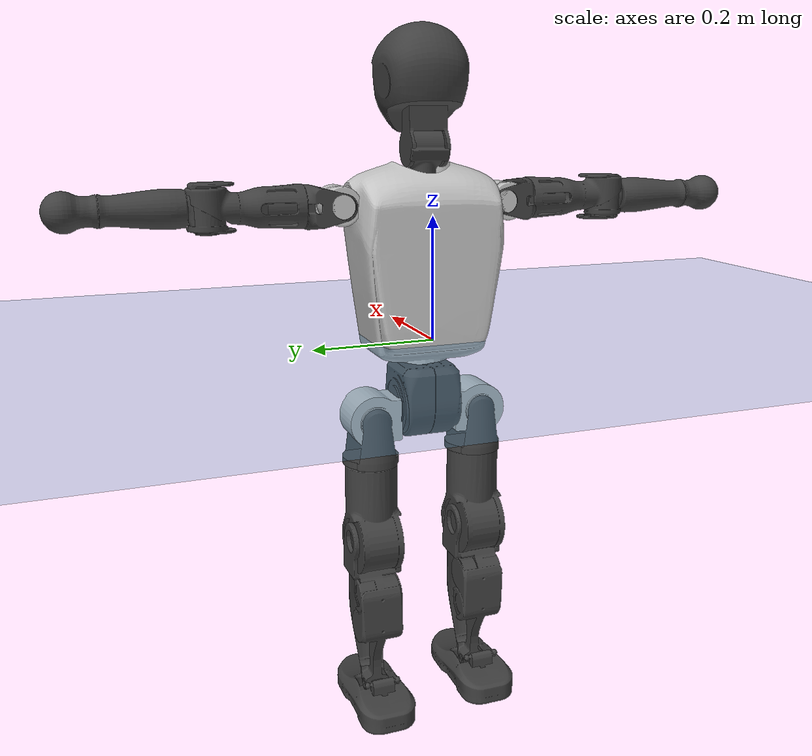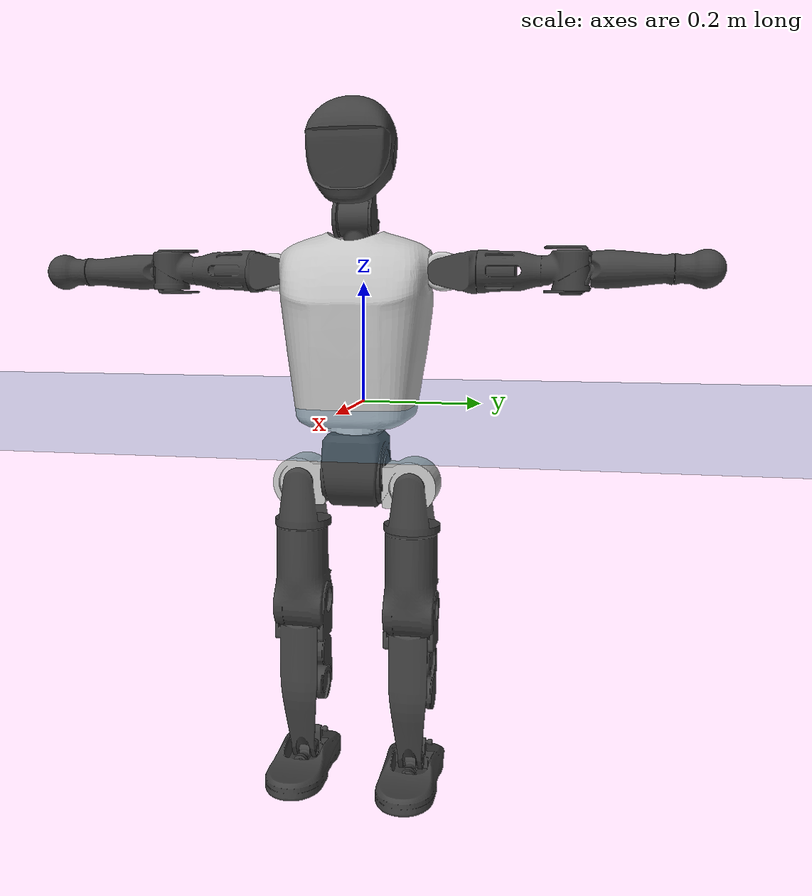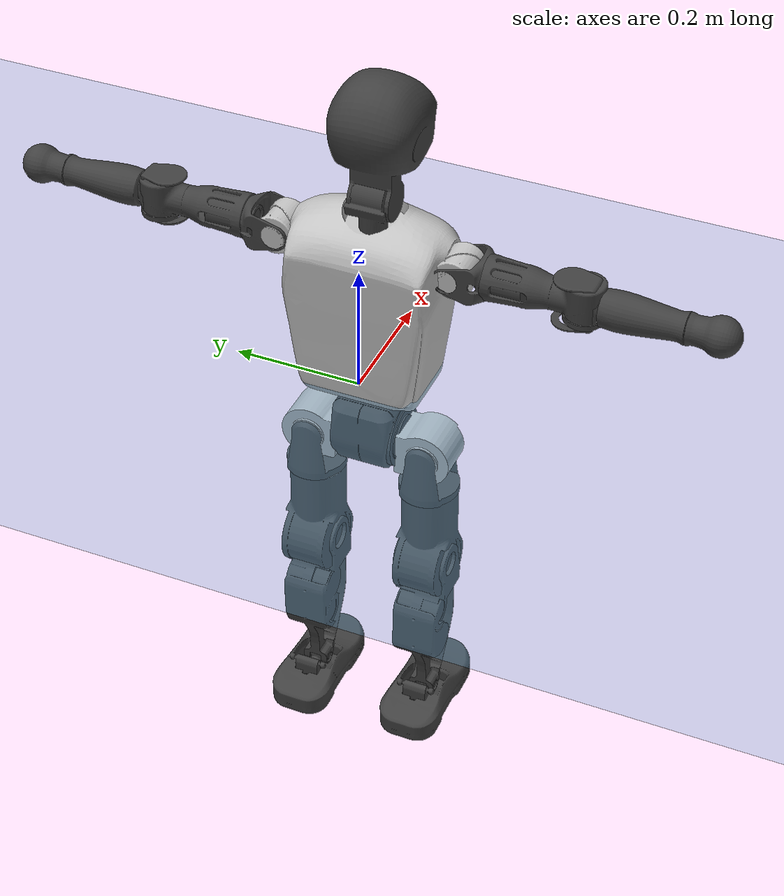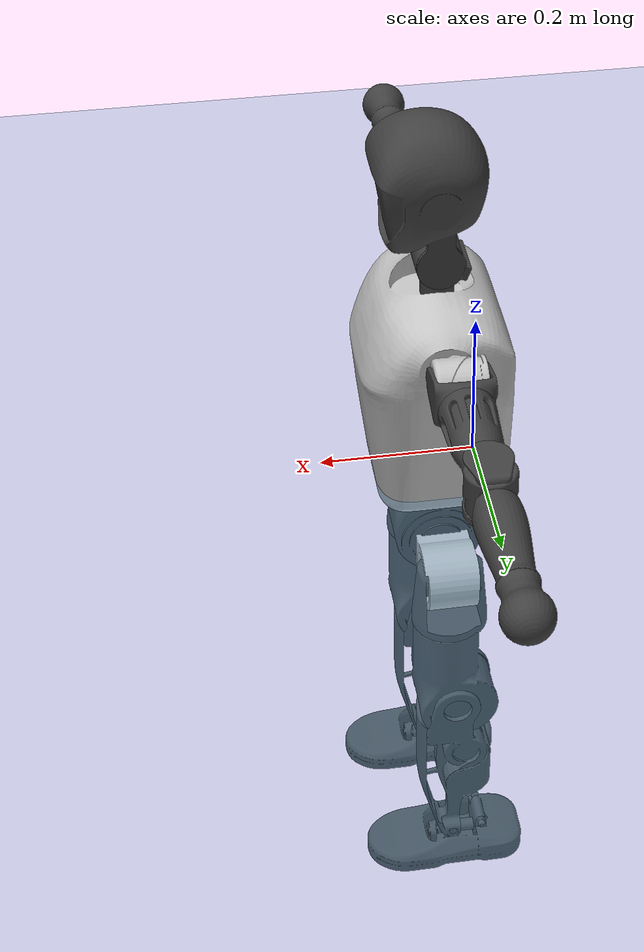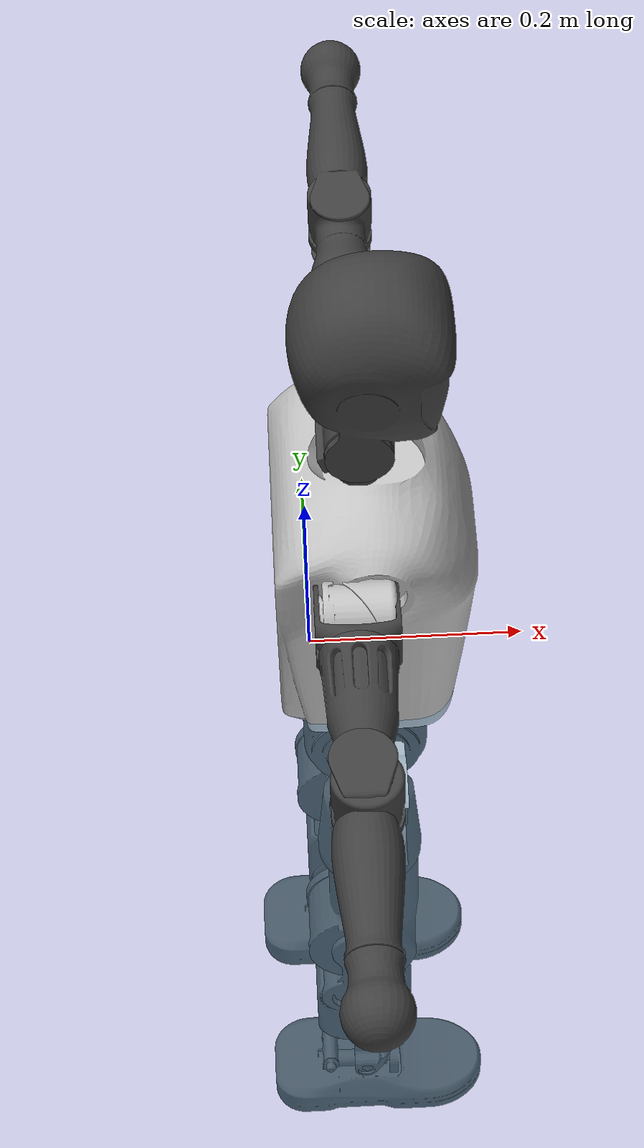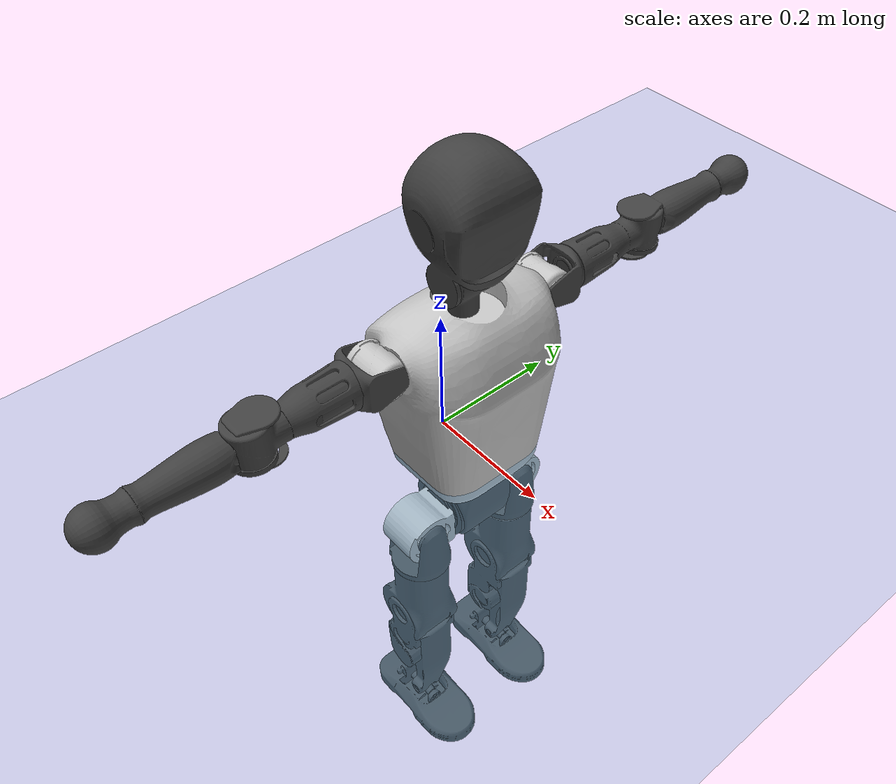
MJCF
<mujoco model="T1">
  <compiler angle="radian" assetdir="assets" balanceinertia="true" inertiafromgeom="false"/>

  <option timestep="0.005" density="1.2" viscosity="2e-05"/>

  <size nkey="1"/>

  <visual>
    <quality shadowsize="8192"/>
    <map shadowclip="0.5"/>
  </visual>

  <default>
    <default class="/">
      <joint armature="0.01" damping="0.01" frictionloss="0.1"/>
      <geom contype="0" conaffinity="0" group="1" solref="-1000 -80"/>
      <site size="0.01 0.005 0.005" group="5"/>
      <general forcelimited="true" biastype="affine" gainprm="25" biasprm="0 -25 -0.6"/>
      <default class="t1">
        <geom rgba="0.25 0.25 0.25 1"/>
        <default class="visual">
          <geom type="mesh" group="2"/>
        </default>
        <default class="collision">
          <geom group="3"/>
        </default>
        <default class="foot">
          <geom size="0.1115 0.05 0.015" type="box" condim="6" group="4" priority="1" solimp="0.015 1 0.015"/>
        </default>
        <default class="reward_collision_sphere">
          <geom group="5" rgba="1 0 0 1"/>
        </default>
      </default>
    </default>
  </default>

  <asset>
    <texture type="skybox" colorspace="auto" name="//unnamed_texture_0" builtin="gradient" rgb1="0.95 0.95 0.95" rgb2="0.95 0.95 0.95" width="100" height="600"/>
    <texture type="2d" colorspace="auto" name="texplane" builtin="checker" rgb1="0.345 0.575 0.748" rgb2="0.345 0.575 0.748" markrgb="1 1 1" width="512" height="512"/>
    <material name="MatPlane" class="/" texture="texplane" texuniform="true" texrepeat="2 2" specular="0.9"/>
    <mesh name="Trunk" class="/" file="Trunk.stl"/>
    <mesh name="H1" class="/" file="H1.stl"/>
    <mesh name="H2" class="/" file="H2.stl"/>
    <mesh name="AL1" class="/" file="AL1.stl"/>
    <mesh name="AL2" class="/" file="AL2.stl"/>
    <mesh name="AL3" class="/" file="AL3.stl"/>
    <mesh name="left_hand_link" class="/" file="left_hand_link.stl"/>
    <mesh name="AR1" class="/" file="AR1.stl"/>
    <mesh name="AR2" class="/" file="AR2.stl"/>
    <mesh name="AR3" class="/" file="AR3.stl"/>
    <mesh name="right_hand_link" class="/" file="right_hand_link.stl"/>
    <mesh name="Waist" class="/" file="Waist.stl"/>
    <mesh name="Hip_Pitch_Left" class="/" file="Hip_Pitch_Left.stl"/>
    <mesh name="Hip_Roll_Left" class="/" file="Hip_Roll_Left.stl"/>
    <mesh name="Hip_Yaw_Left" class="/" file="Hip_Yaw_Left.stl"/>
    <mesh name="Shank_Left" class="/" file="Shank_Left.stl"/>
    <mesh name="Ankle_Cross_Left" class="/" file="Ankle_Cross_Left.stl"/>
    <mesh name="left_foot_link" class="/" file="left_foot_link.stl"/>
    <mesh name="Hip_Pitch_Right" class="/" file="Hip_Pitch_Right.stl"/>
    <mesh name="Hip_Roll_Right" class="/" file="Hip_Roll_Right.stl"/>
    <mesh name="Hip_Yaw_Right" class="/" file="Hip_Yaw_Right.stl"/>
    <mesh name="Shank_Right" class="/" file="Shank_Right.stl"/>
    <mesh name="Ankle_Cross_Right" class="/" file="Ankle_Cross_Right.stl"/>
    <mesh name="right_foot_link" class="/" file="right_foot_link.stl"/>
  </asset>

  <worldbody>
    <geom name="floor" class="/" size="100 100 0.125" type="plane" group="0" material="MatPlane"/>
    <light name="toplight_shadow" class="/" pos="0 0 5" dir="0.0990148 0.0990148 -0.990148" type="directional" ambient="0.04 0.04 0.04" diffuse="0.55 0.55 0.55" specular="0.12 0.12 0.12"/>
    <light name="toplight_fill" class="/" pos="0 0 5" dir="0.0990148 0.0990148 -0.990148" type="directional" castshadow="false" ambient="0.04 0.04 0.04" diffuse="0.3 0.3 0.3" specular="0.08 0.08 0.08"/>
    <body name="trunk" childclass="t1" pos="-0.000546398 -5.97754e-05 0.00192627" quat="1 1.25386e-05 -3.83007e-06 -1.14594e-05">
      <inertial pos="0.0437893 -0.000902023 0.104373" quat="0.999959 2.09181e-05 -0.00900229 5.15875e-05" mass="7.86173" diaginertia="0.0282217 0.0405026 0.0492171"/>
      <joint name="//unnamed_joint_0" type="free" armature="0" damping="0" frictionloss="0"/>
      <geom name="//unnamed_geom_1" class="visual" rgba="0.76 0.76 0.76 1" mesh="Trunk"/>
      <geom name="//unnamed_geom_2" class="collision" size="0.0665342 0.0887122 0.133068" pos="0.0476818 0 0.118211" type="box"/>
      <geom name="//unnamed_geom_3" class="reward_collision_sphere" size="0.102019" pos="0.0476818 0 0.098509"/>
      <geom name="//unnamed_geom_4" class="reward_collision_sphere" size="0.0133068" pos="0.0476818 0.0749343 0"/>
      <geom name="//unnamed_geom_5" class="reward_collision_sphere" size="0.0133068" pos="0.0476818 -0.0749343 0"/>
      <geom name="//unnamed_geom_6" class="reward_collision_sphere" size="0.0133068" pos="0.0476818 0.0943291 0.177316"/>
      <geom name="//unnamed_geom_7" class="reward_collision_sphere" size="0.0133068" pos="0.0476818 -0.0943291 0.177316"/>
      <site name="imu" pos="0.0130377 -0.0117711 -0.00255482" size="0.00887122"/>
      <camera name="track" pos="0 -1.76316 0" quat="0.707107 0.707107 0 0" mode="trackcom"/>
      <camera name="ego_camera" pos="0.096953 0 0.413738" quat="-0.5 -0.5 0.5 0.5"/>
      <body name="H1" pos="0.0493815 -0.00108955 0.239668" quat="1 0.000106844 4.8404e-05 5.82887e-05">
        <inertial pos="-0.00023701 -0.00051202 0.0574313" quat="0.766372 -0.0131957 -0.00162881 0.64226" mass="0.313318" diaginertia="7.91575e-05 0.000119013 0.000143167"/>
        <joint name="AAHead_yaw" pos="0 0 0" axis="0.000981555 -0.000324539 0.999999" stiffness="0.0109593" range="-1.58114 1.58661" armature="0.00848472" damping="0.00475576" frictionloss="0.0933717"/>
        <geom name="//unnamed_geom_8" class="visual" mesh="H1"/>
        <body name="H2" pos="-0.000430692 -0.00263312 0.0609779" quat="1 -4.0023e-05 2.76815e-05 -8.41784e-05">
          <inertial pos="0.00803777 0.00329978 0.0980328" quat="0.988595 0.107907 -0.0743607 -0.0742062" mass="0.457982" diaginertia="0.000643558 0.00104425 0.00161934"/>
          <joint name="Head_pitch" pos="0 0 0" axis="0.00465078 -0.999987 -0.00224781" range="-1.21779 0.373172" armature="0.00788382" damping="0.00266065" frictionloss="0.089028"/>
          <geom name="//unnamed_geom_9" class="visual" mesh="H2"/>
          <geom name="//unnamed_geom_10" class="collision" size="0.0709698" pos="0.00794697 0 0.10836"/>
          <geom name="//unnamed_geom_11" class="reward_collision_sphere" size="0.079841" pos="0.0158939 0 0.098509"/>
        </body>
      </body>
      <body name="AL1" pos="0.0461618 0.095151 0.215453" quat="1 -0.000203189 0.000361012 9.14315e-05">
        <inertial pos="-0.000975274 0.0392876 0.00241897" quat="0.503945 0.49537 -0.50496 0.495644" mass="0.374618" diaginertia="0.000436935 0.000687339 0.000270075"/>
        <joint name="Left_Shoulder_Pitch" pos="0 0 0" axis="0.00245406 0.99998 0.00584598" range="-3.3573 1.19695" armature="0.00846529" damping="0.0084931" frictionloss="0.0885189"/>
        <geom name="//unnamed_geom_12" class="visual" rgba="0.76 0.76 0.76 1" mesh="AL1"/>
        <body name="AL2" pos="1.2369e-05 0.0450198 -0.00130734" quat="0.999999 0.00106462 -0.000181262 -0.000936335">
          <inertial pos="0.00242631 0.0328696 -0.00190929" quat="0.485828 0.512147 -0.488471 0.512906" mass="0.11897" diaginertia="0.000130536 0.000194179 0.000170738"/>
          <joint name="Left_Shoulder_Roll" pos="0 0 0" axis="-0.999991 0.00258475 -0.00333072" range="-1.59458 1.74795" armature="0.00891128" damping="0" frictionloss="0.0922282"/>
          <geom name="//unnamed_geom_13" class="visual" mesh="AL2"/>
          <body name="AL3" pos="0.00176656 0.0564574 0.00126524" quat="0.999999 -0.00112394 0.000219485 -0.000275018">
            <inertial pos="-0.000551267 0.0755913 -0.000147584" quat="0.703109 0.71102 -0.000148752 -0.00936371" mass="0.735324" diaginertia="0.00418285 0.00707621 0.00059403"/>
            <joint name="Left_Elbow_Pitch" pos="0 0 0" axis="-0.00135243 -0.999998 0.00150708" range="-2.27055 2.27414" armature="0.009126" damping="0.012375" frictionloss="0.0893855"/>
            <geom name="//unnamed_geom_14" class="visual" mesh="AL3"/>
            <geom name="//unnamed_geom_15" class="collision" size="0.0266137 0.0665342" pos="0 0.044079 0" quat="0.707105 0.707108 0 0" type="cylinder"/>
            <geom name="//unnamed_geom_16" class="reward_collision_sphere" size="0.0319364"/>
            <body name="left_hand_link" pos="0.000152185 0.132691 0.00217791" quat="0.999999 0.000547197 0.00105538 0.000459094">
              <inertial pos="-0.00039835 0.0968829 -0.00188378" quat="0.710033 0.704075 0.0114527 0.00037781" mass="0.220624" diaginertia="0.00250698 0.0042122 0.000192959"/>
              <joint name="Left_Elbow_Yaw" pos="0 0 0" axis="0.00872013 0.011277 0.999898" range="-2.43931 0.0354387" armature="0.00900304" damping="0.00553198" frictionloss="0.100253"/>
              <geom name="//unnamed_geom_17" class="visual" mesh="left_hand_link"/>
              <geom name="//unnamed_geom_18" class="collision" size="0.0266137 0.0776232" pos="0 0.114605 0" quat="0.707105 0.707108 0 0" type="cylinder"/>
              <geom name="//unnamed_geom_19" class="reward_collision_sphere" size="0.0443561"/>
              <geom name="//unnamed_geom_20" class="reward_collision_sphere" size="0.0310493" pos="0 0.0969739 0"/>
              <geom name="//unnamed_geom_21" class="reward_collision_sphere" size="0.0310493" pos="0 0.18954 0"/>
            </body>
          </body>
        </body>
      </body>
      <body name="AR1" pos="0.0431022 -0.0910056 0.215365" quat="1 4.93119e-05 0.000803949 -0.000161629">
        <inertial pos="-0.000576927 -0.0389093 -0.000556413" quat="0.505241 0.493834 -0.504383 0.496445" mass="0.369407" diaginertia="0.000435773 0.000696776 0.00026956"/>
        <joint name="Right_Shoulder_Pitch" pos="0 0 0" axis="0.000257445 -1 8.17659e-05" stiffness="0.015843" range="-1.17641 3.32073" armature="0.00864125" damping="0.0188155" frictionloss="0.0891133"/>
        <geom name="//unnamed_geom_22" class="visual" rgba="0.76 0.76 0.76 1" mesh="AR1"/>
        <body name="AR2" pos="-0.00275721 -0.0386076 0.000555594" quat="1 -4.06547e-05 -0.000212332 8.14498e-05">
          <inertial pos="0.0020895 -0.0340793 -0.00105405" quat="0.509587 0.487751 -0.512552 0.489602" mass="0.110126" diaginertia="0.000122237 0.000176472 0.000164649"/>
          <joint name="Right_Shoulder_Roll" pos="0 0 0" axis="-0.99999 -0.00416219 -0.00185193" stiffness="0.00703923" range="-1.73559 1.5211" armature="0.0089973" damping="0.00442517" frictionloss="0.0778244"/>
          <geom name="//unnamed_geom_23" class="visual" mesh="AR2"/>
          <body name="AR3" pos="-0.000427826 -0.0507487 0.00205009" quat="1 1.41033e-05 -1.66224e-05 -3.29238e-06">
            <inertial pos="-0.000229461 -0.0741758 -0.000719926" quat="0.705065 0.709034 -0.0123424 0.00143086" mass="0.708821" diaginertia="0.00405689 0.00688679 0.000581929"/>
            <joint name="Right_Elbow_Pitch" pos="0 0 0" axis="2.13577e-05 1 2.4832e-05" stiffness="0.0112051" range="-2.26916 2.27253" armature="0.00915949" damping="0.011104" frictionloss="0.100036"/>
            <geom name="//unnamed_geom_24" class="visual" mesh="AR3"/>
            <geom name="//unnamed_geom_25" class="collision" size="0.0266137 0.0665342" pos="0 -0.044079 0" quat="0.707105 0.707108 0 0" type="cylinder"/>
            <geom name="//unnamed_geom_26" class="reward_collision_sphere" size="0.0319364"/>
            <body name="right_hand_link" pos="-0.00265711 -0.129091 -0.00149671" quat="1 0.000201239 -6.24891e-05 0.000158497">
              <inertial pos="-0.00107682 -0.0966133 0.00325187" quat="0.704593 0.709508 0.0103263 0.00625655" mass="0.219188" diaginertia="0.00246911 0.00419892 0.000192482"/>
              <joint name="Right_Elbow_Yaw" pos="0 0 0" axis="-0.000338555 0.000254191 1" stiffness="0.00127945" range="-0.0408334 2.41985" armature="0.0101502" damping="0.00668482" frictionloss="0.0883155"/>
              <geom name="//unnamed_geom_27" class="visual" mesh="right_hand_link"/>
              <geom name="//unnamed_geom_28" class="collision" size="0.0266137 0.0776232" pos="0 -0.114605 0" quat="0.707105 0.707108 0 0" type="cylinder"/>
              <geom name="//unnamed_geom_29" class="reward_collision_sphere" size="0.0443561"/>
              <geom name="//unnamed_geom_30" class="reward_collision_sphere" size="0.0310493" pos="0 -0.0969739 0"/>
              <geom name="//unnamed_geom_31" class="reward_collision_sphere" size="0.0310493" pos="0 -0.18954 0"/>
            </body>
          </body>
        </body>
      </body>
      <body name="Waist" pos="0.0498474 -0.00192476 -0.115542" quat="1 9.27766e-06 -7.66538e-05 -3.65408e-05">
        <inertial pos="0.00390215 -0.000595979 0.00685214" quat="0.983807 0.00116983 -0.179194 0.00338556" mass="1.7832" diaginertia="0.0016594 0.00266545 0.00425717"/>
        <joint name="Waist" pos="0 0 0" axis="0.00450525 0.00144893 0.999989" range="-1.51859 1.56201" armature="0.00797254" damping="0.010618" frictionloss="0.0886285"/>
        <geom name="//unnamed_geom_32" class="visual" mesh="Waist"/>
        <body name="Hip_Pitch_Left" pos="-0.00177673 0.09501 -0.000542569" quat="0.999999 0.000582598 0.000692352 0.000759726">
          <inertial pos="0.00018074 -0.00406474 -0.0178523" quat="0.975107 0.221332 0.0133295 0.00134121" mass="0.711928" diaginertia="0.000566321 0.000792342 0.00114374"/>
          <joint name="Left_Hip_Pitch" pos="0 0 0" axis="-0.00162135 0.999998 0.00113636" stiffness="0.006036" range="-1.79242 1.59423" armature="0.00885769" damping="0.00914191" frictionloss="0.0889231"/>
          <geom name="//unnamed_geom_33" class="visual" rgba="0.76 0.76 0.76 1" mesh="Hip_Pitch_Left"/>
          <body name="Hip_Roll_Left" pos="3.44072e-06 0.000166144 -0.0206176" quat="1 -0.000464559 -0.000542647 -0.000576129">
            <inertial pos="0.00142451 0.000109442 -0.0517655" quat="0.707285 -0.00511725 -0.00505555 0.706892" mass="0.270882" diaginertia="0.000551785 0.000787813 0.000466209"/>
            <joint name="Left_Hip_Roll" pos="0 0 0" axis="-1 -0.000254997 -7.33529e-05" range="-1.58893 0.221274" armature="0.00895029" damping="0.0109162" frictionloss="0.0973151"/>
            <geom name="//unnamed_geom_34" class="visual" mesh="Hip_Roll_Left"/>
            <geom name="//unnamed_geom_35" class="reward_collision_sphere" size="0.0487917"/>
            <body name="Hip_Yaw_Left" pos="0.00142691 -0.001011 -0.082311" quat="1 0.000307437 -7.146e-05 0.00022253">
              <inertial pos="-0.00445082 -0.000538387 -0.0887609" quat="0.700583 -0.0219123 -0.0313927 0.712543" mass="1.51256" diaginertia="0.00811501 0.0130369 0.00241411"/>
              <joint name="Left_Hip_Yaw" pos="0 0 0" axis="-0.00228682 0.00886438 -0.999958" range="-1.00067 0.993288" armature="0.00894319" damping="0.0161948" frictionloss="0.0885299"/>
              <geom name="//unnamed_geom_36" class="visual" mesh="Hip_Yaw_Left"/>
              <geom name="//unnamed_geom_37" class="collision" size="0.0443561 0.0709698" type="cylinder"/>
              <body name="Shank_Left" pos="-0.0103398 0.000465209 -0.132697" quat="1 0.00012042 0.00015388 5.9769e-05">
                <inertial pos="-0.00523908 -0.000116934 -0.122024" quat="0.997988 -0.00486569 -0.0237509 0.0585873" mass="1.20536" diaginertia="0.0109932 0.0187312 0.00173653"/>
                <joint name="Left_Knee_Pitch" pos="0 0 0" axis="0.00167418 0.999997 0.00162494" range="-0.0130438 2.33149" armature="0.00850305" damping="0.0111461" frictionloss="0.0987553"/>
                <geom name="//unnamed_geom_38" class="visual" mesh="Shank_Left"/>
                <geom name="//unnamed_geom_39" class="collision" size="0.0443561 0.0665342" pos="0 0 -0.118211" type="cylinder"/>
                <geom name="//unnamed_geom_40" class="reward_collision_sphere" size="0.057663"/>
                <body name="Ankle_Cross_Left" pos="-0.00105143 -0.000198822 -0.277356" quat="1 -0.000344627 -5.35718e-05 1.90265e-05">
                  <inertial pos="-0.00243269 0.000369081 -0.0105379" quat="0.443247 0.553352 0.548035 0.443837" mass="0.052113" diaginertia="9.74289e-06 1.38515e-05 1.07485e-05"/>
                  <joint name="Left_Ankle_Pitch" pos="0 0 0" axis="0.00240221 0.999997 0.000847869" stiffness="0.000859137" range="-0.920693 0.362731" armature="0.0087401" damping="0.00574718" frictionloss="0.0991015"/>
                  <geom name="//unnamed_geom_41" class="visual" mesh="Ankle_Cross_Left"/>
                  <body name="left_foot_link" pos="0.000990694 8.53744e-05 -0.0151816" quat="1 -0.000248232 4.89369e-05 -0.000230432">
                    <inertial pos="0.000572304 -0.00247522 -0.00989785" quat="0.00150209 0.619817 -0.00140355 0.784744" mass="0.477242" diaginertia="0.000867676 0.00126666 0.00200096"/>
                    <joint name="Left_Ankle_Roll" pos="0 0 0" axis="-0.999999 -0.00027689 -0.00108487" range="-0.462639 0.451213" armature="0.00901455" damping="0.0138581" frictionloss="0.0881597"/>
                    <geom name="//unnamed_geom_42" class="visual" mesh="left_foot_link"/>
                    <geom name="left_foot" class="foot" size="0.101274 0.0474965 0.0138882" pos="0.00794697 0 -0.0147763"/>
                    <geom name="//unnamed_geom_44" class="reward_collision_sphere" size="0.0461304" pos="0.00794697 0 -0.0147763"/>
                    <geom name="//unnamed_geom_45" class="reward_collision_sphere" size="0.0266137" pos="0.0754962 -0.0202764 -0.0147763"/>
                    <geom name="//unnamed_geom_46" class="reward_collision_sphere" size="0.0266137" pos="-0.0556288 -0.0202764 -0.0147763"/>
                    <site name="left_foot" class="foot" pos="0.00794697 0 -0.0147763" size="0.00887122"/>
                  </body>
                </body>
              </body>
            </body>
          </body>
        </body>
        <body name="Hip_Pitch_Right" pos="0.0019961 -0.0929483 0.00165233" quat="1 -0.000349096 0.000430092 0.00039038">
          <inertial pos="0.000328786 0.00565653 -0.0149836" quat="0.971539 -0.236184 0.0135509 -0.0120464" mass="0.702981" diaginertia="0.000565403 0.000767122 0.00117091"/>
          <joint name="Right_Hip_Pitch" pos="0 0 0" axis="-0.00756401 -0.999967 0.00310569" range="-1.56969 1.79906" armature="0.00976555" damping="0.0128064" frictionloss="0.0910882"/>
          <geom name="//unnamed_geom_47" class="visual" rgba="0.76 0.76 0.76 1" mesh="Hip_Pitch_Right"/>
          <body name="Hip_Roll_Right" pos="0.000871768 0.000143624 -0.0189658" quat="0.999999 -0.00091637 -0.00106573 -0.000235923">
            <inertial pos="0.00389251 -0.000906734 -0.0541049" quat="0.703877 -0.00618393 0.00272947 0.71029" mass="0.263075" diaginertia="0.000531446 0.000780615 0.000468642"/>
            <joint name="Right_Hip_Roll" pos="0 0 0" axis="-0.999983 0.00105099 -0.0056503" stiffness="0.00135066" range="-0.209323 1.61165" armature="0.00898115" damping="0.00362615" frictionloss="0.0888797"/>
            <geom name="//unnamed_geom_48" class="visual" mesh="Hip_Roll_Right"/>
            <geom name="//unnamed_geom_49" class="reward_collision_sphere" size="0.0487917"/>
            <body name="Hip_Yaw_Right" pos="0.000791607 -0.00166232 -0.0801631" quat="0.999999 -0.000449767 -0.00110311 -0.000835956">
              <inertial pos="-0.00423348 0.000486198 -0.0888366" quat="0.713113 -0.0306323 -0.0281441 0.699813" mass="1.54729" diaginertia="0.00866727 0.014344 0.00248244"/>
              <joint name="Right_Hip_Yaw" pos="0 0 0" axis="0.000753216 -0.000203545 -1" range="-1.01228 0.955358" armature="0.00897249" damping="0.0123719" frictionloss="0.0778093"/>
              <geom name="//unnamed_geom_50" class="visual" mesh="Hip_Yaw_Right"/>
              <geom name="//unnamed_geom_51" class="collision" size="0.0443561 0.0709698" type="cylinder"/>
              <body name="Shank_Right" pos="-0.013178 0.000802569 -0.132507" quat="0.999999 0.000497769 -0.000862258 -0.000504792">
                <inertial pos="-0.00248019 0.000331845 -0.119818" quat="0.999297 0.000775886 -0.0232158 -0.0294347" mass="1.29982" diaginertia="0.0112177 0.0182043 0.00179464"/>
                <joint name="Right_Knee_Pitch" pos="0 0 0" axis="-0.00212314 -0.999993 -0.00298642" stiffness="0.00125687" range="-2.31722 0.00817107" armature="0.00900001" damping="0.0124354" frictionloss="0.0874391"/>
                <geom name="//unnamed_geom_52" class="visual" mesh="Shank_Right"/>
                <geom name="//unnamed_geom_53" class="collision" size="0.0443561 0.0665342" pos="0 0 -0.118211" type="cylinder"/>
                <geom name="//unnamed_geom_54" class="reward_collision_sphere" size="0.057663"/>
                <body name="Ankle_Cross_Right" pos="0.00113516 0.000342488 -0.277182" quat="0.999999 -0.000595179 0.000803002 -0.000697636">
                  <inertial pos="-0.00308228 -0.000285047 -0.00740911" quat="0.442488 0.551849 0.549962 0.444083" mass="0.0485253" diaginertia="9.01252e-06 1.34332e-05 1.03596e-05"/>
                  <joint name="Right_Ankle_Pitch" pos="0 0 0" axis="0.0126096 -0.999901 -0.00630257" range="-0.344413 0.840589" armature="0.00974331" damping="0.000842514" frictionloss="0.0771368"/>
                  <geom name="//unnamed_geom_55" class="visual" mesh="Ankle_Cross_Right"/>
                  <body name="right_foot_link" pos="0.0021316 -0.00203586 -0.0110303" quat="1 0.000105181 0.000156098 0.000106298">
                    <inertial pos="-0.0011279 -0.000921439 -0.0111901" quat="0.00108028 0.622206 0.0016168 0.782852" mass="0.488027" diaginertia="0.000835833 0.00125889 0.00201834"/>
                    <joint name="Right_Ankle_Roll" pos="0 0 0" axis="-0.999934 0.0114666 -0.000705304" range="-0.386167 0.440347" armature="0.0080456" damping="0.00775077" frictionloss="0.0893811"/>
                    <geom name="//unnamed_geom_56" class="visual" mesh="right_foot_link"/>
                    <geom name="right_foot" class="foot" size="0.0929088 0.0449738 0.0136355" pos="0.00794697 0 -0.0147763"/>
                    <geom name="//unnamed_geom_58" class="reward_collision_sphere" size="0.0354849"/>
                    <geom name="//unnamed_geom_59" class="reward_collision_sphere" size="0.0266137" pos="0.00794697 0 -0.0147763"/>
                    <geom name="//unnamed_geom_60" class="reward_collision_sphere" size="0.0266137" pos="0.0754962 0.0202764 -0.0147763"/>
                    <geom name="//unnamed_geom_61" class="reward_collision_sphere" size="0.0266137" pos="-0.0556288 0.0202764 -0.0147763"/>
                    <site name="right_foot" class="foot" pos="0.00794697 0 -0.0147763" size="0.00887122"/>
                  </body>
                </body>
              </body>
            </body>
          </body>
        </body>
      </body>
    </body>
  </worldbody>

  <contact>
    <pair class="/" geom1="floor" geom2="left_foot" name="//unnamed_contact_0"/>
    <pair class="/" geom1="floor" geom2="right_foot" name="//unnamed_contact_1"/>
  </contact>

  <actuator>
    <general name="AAHead_yaw" class="/" joint="AAHead_yaw" forcerange="-6.2222 6.2222" gainprm="23.3713" biasprm="0 -23.3713 -0.513708"/>
    <general name="Head_pitch" class="/" joint="Head_pitch" forcerange="-6.14261 6.14261" gainprm="23.3713" biasprm="0 -23.3713 -0.513708"/>
    <general name="Left_Shoulder_Pitch" class="/" joint="Left_Shoulder_Pitch" forcerange="-15.7582 15.7582" gainprm="23.3713" biasprm="0 -23.3713 -0.513708"/>
    <general name="Left_Shoulder_Roll" class="/" joint="Left_Shoulder_Roll" forcerange="-16.044 16.044" gainprm="23.3713" biasprm="0 -23.3713 -0.513708"/>
    <general name="Left_Elbow_Pitch" class="/" joint="Left_Elbow_Pitch" forcerange="-17.3356 17.3356" gainprm="23.3713" biasprm="0 -23.3713 -0.513708"/>
    <general name="Left_Elbow_Yaw" class="/" joint="Left_Elbow_Yaw" forcerange="-16.5022 16.5022" gainprm="23.3713" biasprm="0 -23.3713 -0.513708"/>
    <general name="Right_Shoulder_Pitch" class="/" joint="Right_Shoulder_Pitch" forcerange="-16.3164 16.3164" gainprm="23.3713" biasprm="0 -23.3713 -0.513708"/>
    <general name="Right_Shoulder_Roll" class="/" joint="Right_Shoulder_Roll" forcerange="-15.8681 15.8681" gainprm="23.3713" biasprm="0 -23.3713 -0.513708"/>
    <general name="Right_Elbow_Pitch" class="/" joint="Right_Elbow_Pitch" forcerange="-16.5868 16.5868" gainprm="23.3713" biasprm="0 -23.3713 -0.513708"/>
    <general name="Right_Elbow_Yaw" class="/" joint="Right_Elbow_Yaw" forcerange="-17.2223 17.2223" gainprm="23.3713" biasprm="0 -23.3713 -0.513708"/>
    <general name="Waist" class="/" joint="Waist" forcerange="-26.6966 26.6966" gainprm="23.3713" biasprm="0 -23.3713 -0.513708"/>
    <general name="Left_Hip_Pitch" class="/" joint="Left_Hip_Pitch" forcerange="-35.901 35.901" gainprm="23.3713" biasprm="0 -23.3713 -0.513708"/>
    <general name="Left_Hip_Roll" class="/" joint="Left_Hip_Roll" forcerange="-25.6165 25.6165" gainprm="23.3713" biasprm="0 -23.3713 -0.513708"/>
    <general name="Left_Hip_Yaw" class="/" joint="Left_Hip_Yaw" forcerange="-25.6944 25.6944" gainprm="23.3713" biasprm="0 -23.3713 -0.513708"/>
    <general name="Left_Knee_Pitch" class="/" joint="Left_Knee_Pitch" forcerange="-57.279 57.279" gainprm="23.3713" biasprm="0 -23.3713 -0.513708"/>
    <general name="Left_Ankle_Pitch" class="/" joint="Left_Ankle_Pitch" forcerange="-17.2408 17.2408" gainprm="23.3713" biasprm="0 -23.3713 -0.513708"/>
    <general name="Left_Ankle_Roll" class="/" joint="Left_Ankle_Roll" forcerange="-13.4135 13.4135" gainprm="23.3713" biasprm="0 -23.3713 -0.513708"/>
    <general name="Right_Hip_Pitch" class="/" joint="Right_Hip_Pitch" forcerange="-43.7906 43.7906" gainprm="23.3713" biasprm="0 -23.3713 -0.513708"/>
    <general name="Right_Hip_Roll" class="/" joint="Right_Hip_Roll" forcerange="-25.5065 25.5065" gainprm="23.3713" biasprm="0 -23.3713 -0.513708"/>
    <general name="Right_Hip_Yaw" class="/" joint="Right_Hip_Yaw" forcerange="-25.6595 25.6595" gainprm="23.3713" biasprm="0 -23.3713 -0.513708"/>
    <general name="Right_Knee_Pitch" class="/" joint="Right_Knee_Pitch" forcerange="-55.0177 55.0177" gainprm="23.3713" biasprm="0 -23.3713 -0.513708"/>
    <general name="Right_Ankle_Pitch" class="/" joint="Right_Ankle_Pitch" forcerange="-17.8613 17.8613" gainprm="23.3713" biasprm="0 -23.3713 -0.513708"/>
    <general name="Right_Ankle_Roll" class="/" joint="Right_Ankle_Roll" forcerange="-12.0385 12.0385" gainprm="23.3713" biasprm="0 -23.3713 -0.513708"/>
  </actuator>

  <sensor>
    <gyro site="imu" name="imu_angular_velocity"/>
    <velocimeter site="imu" name="imu_linear_velocity"/>
    <framelinvel objtype="site" objname="left_foot" name="left_foot_global_linear_velocity"/>
    <framelinvel objtype="site" objname="right_foot" name="right_foot_global_linear_velocity"/>
  </sensor>

  <keyframe>
    <key name="home" qpos="0 0 0.6385 1 0 0 0 0 0 0 1.4 0 -0.4 0 -1.4 0 0.4 0 -0.4 0 0 0.8 -0.4 0 0.4 0 0 -0.8 0.4 0"/>
  </keyframe>
</mujoco>
